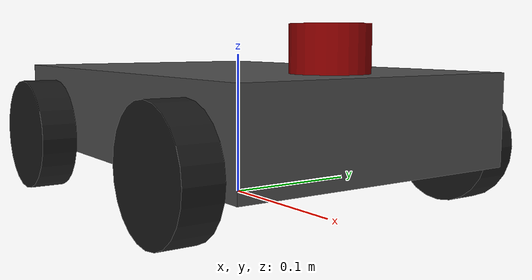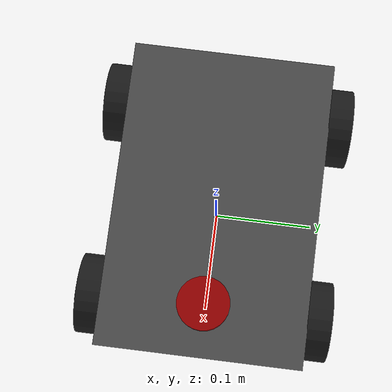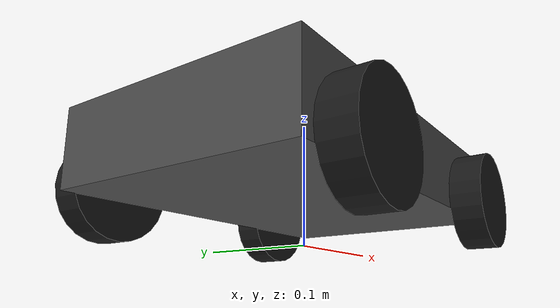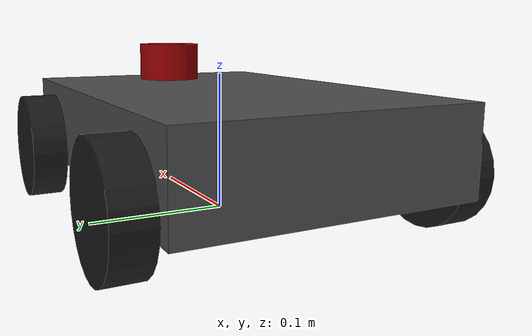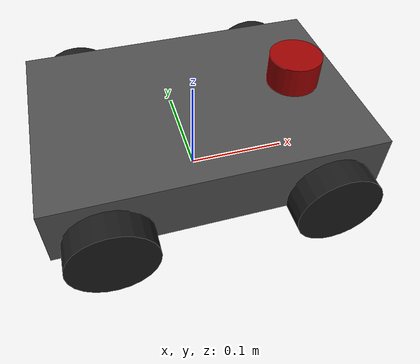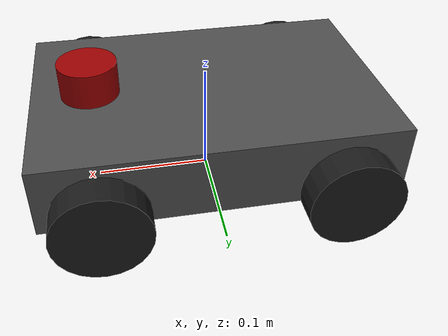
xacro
<?xml version="1.0"?>

<robot name="uni-robot" xmlns:xacro="http://www.ros.org/wiki/xacro">
	<xacro:include filename="$(find RViz_Simulation_Package)/urdf/params.xacro" />

	<material name="red">
		<color rgba="0.6 0 0 1" />
	</material>

	<material name="black">
		<color rgba="0.1 0.1 0.1 1" />
	</material>

	<link name="world"/>
	<link name="body">
		<visual>
			<origin rpy="0 0 0" xyz="0 0 ${base_altitude + base_height/2}" />
			<geometry>
				<box size="${base_length} ${base_width} ${base_height}" />
			</geometry>
			<material name="gray">
				<color rgba="0.3 0.3 0.3 1" />
			</material>
		</visual>
	</link>

	<link name="right_wheel">
		<visual>
			<origin rpy="1.5702 0 0" xyz="${-offset} ${-base_width/2-wheel_length/2} ${wheel_radius}"/>
			<geometry>
				<cylinder radius="${wheel_radius}" length="${wheel_length}" />
			</geometry>
			<material name="black"/>
		</visual>
	</link>

	<link name="left_wheel">
		<visual>
			<origin rpy="1.5702 0 0" xyz="${-offset} ${base_width/2+wheel_length/2} ${wheel_radius}"/>
			<geometry>
				<cylinder radius="${wheel_radius}" length="${wheel_length}" />
			</geometry>
			<material name="black"/>
		</visual>
	</link>
	 <link name="right_front_wheel">
		<visual>
			<origin rpy="1.5702 0 0" xyz="0 0 0"/>
			<geometry>
				<cylinder radius="${wheel_radius}" length="${wheel_length}" />
			</geometry>
			<material name="black"/>
		</visual>
	</link>
	<link name="left_front_wheel">
		<visual>
			<origin rpy="1.5702 0 0" xyz="0 0 0"/>
			<geometry>
				<cylinder radius="${wheel_radius}" length="${wheel_length}" />
			</geometry>
			<material name="black"/>
		</visual>
	</link>

	<link name="camera">
		<visual>
			<geometry>
				<cylinder radius="${camera_radius}" length="${camera_length}" />
			</geometry>
			<material name="red"/>
		</visual>
	</link>

	<joint name="world_to_body" type="fixed">
		<parent link="world" />
		<child link="body" />
	</joint>

	<joint name="body_to_left_wheel" type="fixed">
		<parent link="body" />
		<child link="left_wheel" />
	</joint>

	<joint name="body_to_right_wheel" type="fixed">
		<parent link="body" />
		<child link="right_wheel" />

	</joint>

	<joint name="body_to_right_front_wheel" type="fixed">
		<parent link="body" />
		<child link="right_front_wheel" />
		<origin xyz="${offset} ${-base_width/2-wheel_length/2} ${wheel_radius}" />
		<axis xyz="0 0 1" />
		<limit effort="10" velocity="1" lower="-1.57" upper="1.57" />

	</joint>

	<joint name="body_to_left_front_wheel" type="fixed">
		<parent link="body" />
		<child link="left_front_wheel" />
		<origin xyz="${offset} ${base_width/2+wheel_length/2} ${wheel_radius}" />
		<axis xyz="0 0 1" />
		<limit effort="10" velocity="1" lower="-1.57" upper="1.57" />
	</joint>

	<joint name="body_to_camera" type="fixed">
		<parent link="body" />
		<child link="camera" />
		<origin xyz="${offset} 0 ${base_altitude + base_height + camera_length/2}" rpy="0 0 0" />
	</joint>

</robot>

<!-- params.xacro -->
<robot name="my_robot" xmlns:xacro="http://www.ros.org/wiki/xacro">
	<xacro:property name="base_height" value="0.06"/>
	<xacro:property name="base_length" value="0.3"/>
	<xacro:property name="base_width" value="0.2"/>
	<xacro:property name="base_altitude" value="0.03"/>
	<xacro:property name="wheel_length" value="0.025"/>
	<xacro:property name="wheel_radius" value="0.04"/>
	<xacro:property name="castor_offset" value="0.07"/>
	<xacro:property name="camera_length" value="0.03"/>
	<xacro:property name="camera_radius" value="0.025"/>
	<xacro:property name="offset" value="0.1"/>
</robot>
